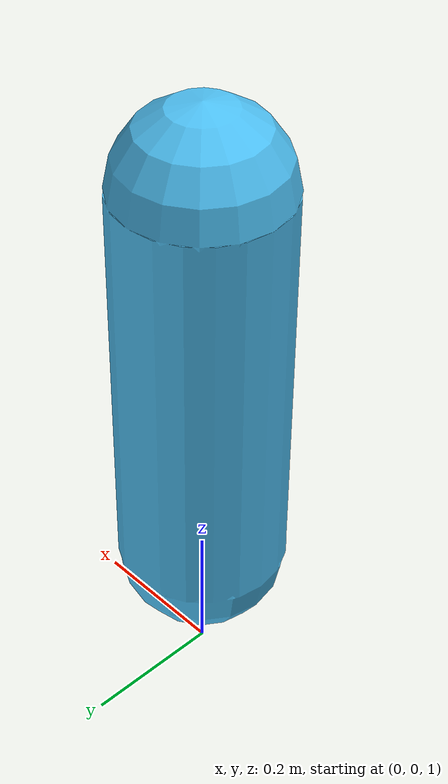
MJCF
<mujoco model="imported-showcase">
  <!-- Complete self-contained fixture for editor import and preview tests. -->
  <option timestep="0.008333333333" gravity="0 0 -9.81"/>
  <worldbody>
    <geom name="floor" type="plane" size="3 3 0.1" rgba="0.25 0.28 0.32 1"/>
    <body name="falling_capsule" pos="0 0 1.5">
      <freejoint name="root"/>
      <geom name="capsule" type="capsule" size="0.12 0.3"
            mass="1" rgba="0.3 0.75 0.95 1"/>
    </body>
  </worldbody>
</mujoco>
